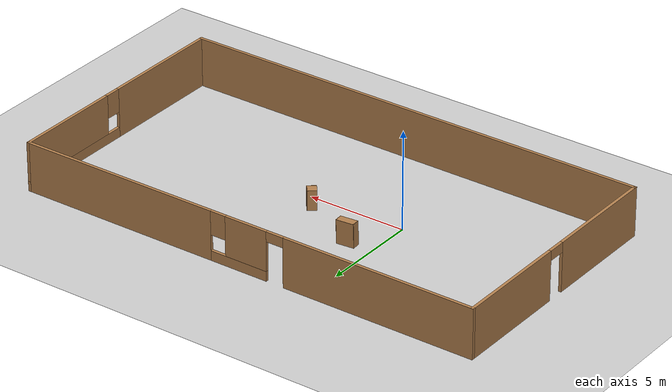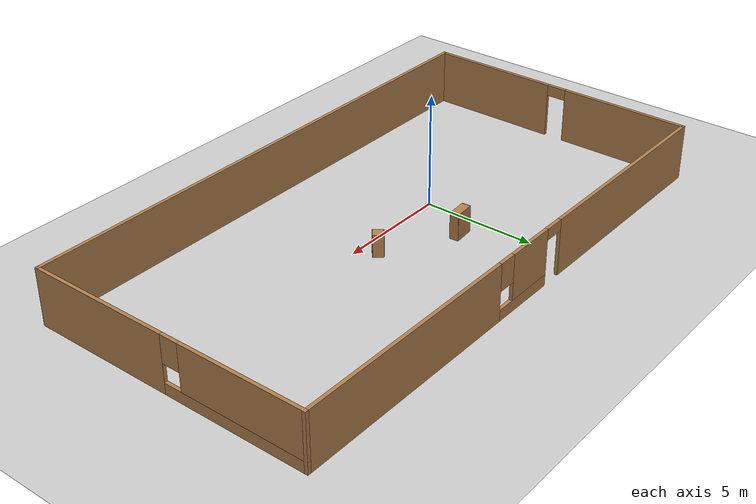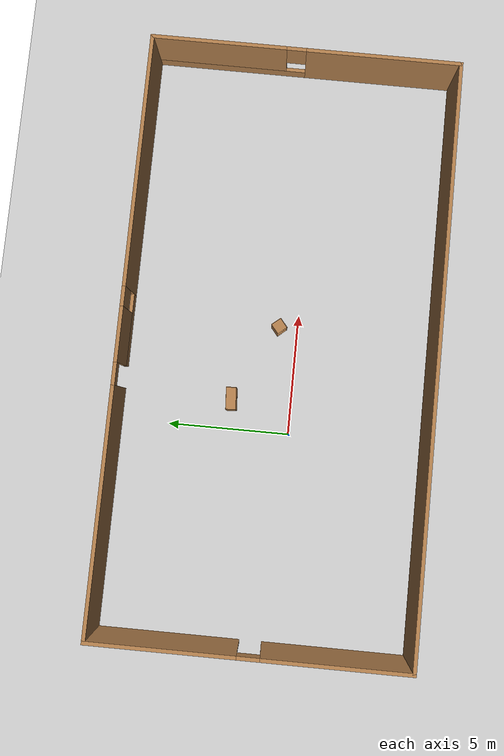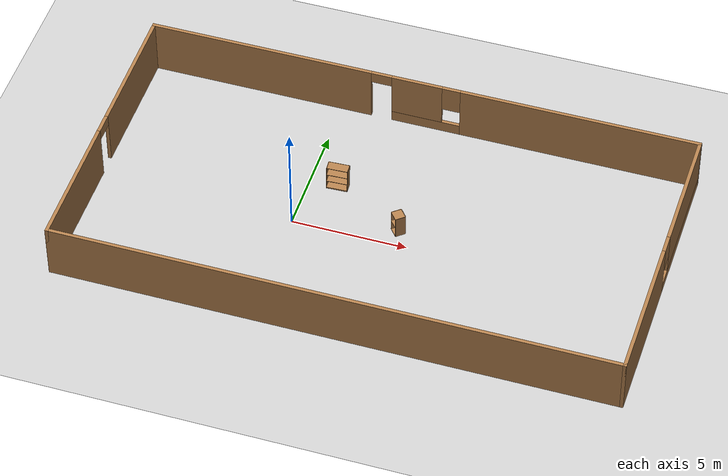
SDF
<sdf version="1.7">
 <world name="default">
  <light name="sun" type="directional">
   <pose>0 0 10 0 -0 0</pose>
   <diffuse>0.8 0.8 0.8 1</diffuse>
   <specular>0.2 0.2 0.2 1</specular>
   <attenuation>
    <range>1000</range>
    <constant>0.9</constant>
    <linear>0.01</linear>
    <quadratic>0.001</quadratic>
   </attenuation>
   <direction>-0.5 0.1 -0.9</direction>
   <spot><inner_angle>0</inner_angle><outer_angle>0</outer_angle><falloff>0</falloff></spot>
  </light>
  <model name="ground_plane">
   <static>1</static>
   <link name="link">
    <collision name="collision">
     <geometry><plane><normal>0 0 1</normal><size>100 100</size></plane></geometry>
     <surface><friction><ode><mu>100</mu><mu2>50</mu2></ode></friction></surface>
    </collision>
    <visual name="visual">
     <cast_shadows>0</cast_shadows>
     <geometry><plane><normal>0 0 1</normal><size>100 100</size></plane></geometry>
     <material>
      <script><uri>file://media/materials/scripts/gazebo.material</uri><name>Gazebo/Grey</name></script>
     </material>
    </visual>
   </link>
  </model>
  <gravity>0 0 -9.8</gravity>
  <magnetic_field>6e-06 2.3e-05 -4.2e-05</magnetic_field>
  <atmosphere type="adiabatic"/>
  <physics type="ode">
   <max_step_size>0.001</max_step_size>
   <real_time_factor>1</real_time_factor>
   <real_time_update_rate>1000</real_time_update_rate>
  </physics>
  <scene><ambient>0.4 0.4 0.4 1</ambient><background>0.7 0.7 0.7 1</background><shadows>1</shadows></scene>
  <audio><device>default</device></audio>
  <spherical_coordinates>
   <surface_model>EARTH_WGS84</surface_model>
   <latitude_deg>0</latitude_deg>
   <longitude_deg>0</longitude_deg>
   <elevation>0</elevation>
   <heading_deg>0</heading_deg>
  </spherical_coordinates>
  <model name="bookshelf">
   <static>1</static>
   <link name="link">
    <inertial><mass>1</mass></inertial>
    <collision name="back">
     <pose>0 0.005 0.6 0 -0 0</pose>
     <geometry><box><size>0.9 0.01 1.2</size></box></geometry>
    </collision>
    <visual name="visual1">
     <pose>0 0.005 0.6 0 -0 0</pose>
     <geometry><box><size>0.9 0.01 1.2</size></box></geometry>
     <material>
      <script><uri>file://media/materials/scripts/gazebo.material</uri><name>Gazebo/Wood</name></script>
     </material>
    </visual>
    <collision name="left_side">
     <pose>0.45 -0.195 0.6 0 -0 0</pose>
     <geometry><box><size>0.02 0.4 1.2</size></box></geometry>
    </collision>
    <visual name="visual2">
     <pose>0.45 -0.195 0.6 0 -0 0</pose>
     <geometry><box><size>0.02 0.4 1.2</size></box></geometry>
     <material>
      <script><uri>file://media/materials/scripts/gazebo.material</uri><name>Gazebo/Wood</name></script>
     </material>
    </visual>
    <collision name="right_side">
     <pose>-0.45 -0.195 0.6 0 -0 0</pose>
     <geometry><box><size>0.02 0.4 1.2</size></box></geometry>
    </collision>
    <visual name="visual3">
     <pose>-0.45 -0.195 0.6 0 -0 0</pose>
     <geometry><box><size>0.02 0.4 1.2</size></box></geometry>
     <material>
      <script><uri>file://media/materials/scripts/gazebo.material</uri><name>Gazebo/Wood</name></script>
     </material>
    </visual>
    <collision name="bottom">
     <pose>0 -0.195 0.03 0 -0 0</pose>
     <geometry><box><size>0.88 0.4 0.06</size></box></geometry>
    </collision>
    <visual name="visual4">
     <pose>0 -0.195 0.03 0 -0 0</pose>
     <geometry><box><size>0.88 0.4 0.06</size></box></geometry>
     <material>
      <script><uri>file://media/materials/scripts/gazebo.material</uri><name>Gazebo/Wood</name></script>
     </material>
    </visual>
    <collision name="top">
     <pose>0 -0.195 1.19 0 -0 0</pose>
     <geometry><box><size>0.88 0.4 0.02</size></box></geometry>
    </collision>
    <visual name="visual5">
     <pose>0 -0.195 1.19 0 -0 0</pose>
     <geometry><box><size>0.88 0.4 0.02</size></box></geometry>
     <material>
      <script><uri>file://media/materials/scripts/gazebo.material</uri><name>Gazebo/Wood</name></script>
     </material>
    </visual>
    <collision name="low_shelf">
     <pose>0 -0.195 0.43 0 -0 0</pose>
     <geometry><box><size>0.88 0.4 0.02</size></box></geometry>
    </collision>
    <visual name="visual6">
     <pose>0 -0.195 0.43 0 -0 0</pose>
     <geometry><box><size>0.88 0.4 0.02</size></box></geometry>
     <material>
      <script><uri>file://media/materials/scripts/gazebo.material</uri><name>Gazebo/Wood</name></script>
     </material>
    </visual>
    <collision name="high_shelf">
     <pose>0 -0.195 0.8 0 -0 0</pose>
     <geometry><box><size>0.88 0.4 0.02</size></box></geometry>
    </collision>
    <visual name="visual7">
     <pose>0 -0.195 0.8 0 -0 0</pose>
     <geometry><box><size>0.88 0.4 0.02</size></box></geometry>
     <material>
      <script><uri>file://media/materials/scripts/gazebo.material</uri><name>Gazebo/Wood</name></script>
     </material>
    </visual>
   </link>
   <pose>1.2122 2.65017 0.02213 0.001573 0.0244 0.064392</pose>
  </model>
  <model name="building01">
   <pose>3.52149 0.727704 0 0 -0 0</pose>
   <link name="Wall_1">
    <pose>-12.05 -0 0 0 -0 -1.5708</pose>
    <visual name="Wall_1_Visual_0">
     <pose>-3.42458 0 1.25 0 -0 0</pose>
     <geometry><box><size>5.90084 0.15 2.5</size></box></geometry>
     <material>
      <script><uri>file://media/materials/scripts/gazebo.material</uri><name>Gazebo/Wood</name></script>
      <ambient>1 1 1 1</ambient>
     </material>
     <meta><layer>0</layer></meta>
    </visual>
    <collision name="Wall_1_Collision_0">
     <geometry><box><size>5.90084 0.15 2.5</size></box></geometry>
     <pose>-3.42458 0 1.25 0 -0 0</pose>
    </collision>
    <visual name="Wall_1_Visual_1">
     <pose>3.40042 0 1.25 0 -0 0</pose>
     <geometry><box><size>5.94916 0.15 2.5</size></box></geometry>
     <material>
      <script><uri>file://media/materials/scripts/gazebo.material</uri><name>Gazebo/Wood</name></script>
      <ambient>1 1 1 1</ambient>
     </material>
     <meta><layer>0</layer></meta>
    </visual>
    <collision name="Wall_1_Collision_1">
     <geometry><box><size>5.94916 0.15 2.5</size></box></geometry>
     <pose>3.40042 0 1.25 0 -0 0</pose>
    </collision>
    <visual name="Wall_1_Visual_2">
     <pose>-0.024157 0 2.25 0 -0 0</pose>
     <geometry><box><size>0.9 0.15 0.5</size></box></geometry>
     <material>
      <script><uri>file://media/materials/scripts/gazebo.material</uri><name>Gazebo/Wood</name></script>
      <ambient>1 1 1 1</ambient>
     </material>
     <meta><layer>0</layer></meta>
    </visual>
    <collision name="Wall_1_Collision_2">
     <geometry><box><size>0.9 0.15 0.5</size></box></geometry>
     <pose>-0.024157 0 2.25 0 -0 0</pose>
    </collision>
   </link>
   <link name="Wall_2">
    <collision name="Wall_2_Collision">
     <geometry><box><size>24.25 0.15 2.5</size></box></geometry>
     <pose>0 0 1.25 0 -0 0</pose>
    </collision>
    <visual name="Wall_2_Visual">
     <pose>0 0 1.25 0 -0 0</pose>
     <geometry><box><size>24.25 0.15 2.5</size></box></geometry>
     <material>
      <script><uri>file://media/materials/scripts/gazebo.material</uri><name>Gazebo/Wood</name></script>
      <ambient>1 1 1 1</ambient>
     </material>
     <meta><layer>0</layer></meta>
    </visual>
    <pose>0 -6.3 0 0 -0 0</pose>
   </link>
   <link name="Wall_3">
    <pose>12.05 -0 0 0 -0 1.5708</pose>
    <visual name="Wall_3_Visual_0">
     <pose>-3.18672 0 1.25 0 -0 0</pose>
     <geometry><box><size>6.37657 0.15 2.5</size></box></geometry>
     <material>
      <script><uri>file://media/materials/scripts/gazebo.material</uri><name>Gazebo/Wood</name></script>
      <ambient>1 1 1 1</ambient>
     </material>
     <meta><layer>0</layer></meta>
    </visual>
    <collision name="Wall_3_Collision_0">
     <geometry><box><size>6.37657 0.15 2.5</size></box></geometry>
     <pose>-3.18672 0 1.25 0 -0 0</pose>
    </collision>
    <visual name="Wall_3_Visual_1">
     <pose>3.18828 0 0.25 0 -0 0</pose>
     <geometry><box><size>6.37343 0.15 0.5</size></box></geometry>
     <material>
      <script><uri>file://media/materials/scripts/gazebo.material</uri><name>Gazebo/Wood</name></script>
      <ambient>1 1 1 1</ambient>
     </material>
     <meta><layer>0</layer></meta>
    </visual>
    <collision name="Wall_3_Collision_1">
     <geometry><box><size>6.37343 0.15 0.5</size></box></geometry>
     <pose>3.18828 0 0.25 0 -0 0</pose>
    </collision>
    <visual name="Wall_3_Visual_2">
     <pose>3.58828 0 1.5 0 -0 0</pose>
     <geometry><box><size>5.57343 0.15 2</size></box></geometry>
     <material>
      <script><uri>file://media/materials/scripts/gazebo.material</uri><name>Gazebo/Wood</name></script>
      <ambient>1 1 1 1</ambient>
     </material>
     <meta><layer>0</layer></meta>
    </visual>
    <collision name="Wall_3_Collision_2">
     <geometry><box><size>5.57343 0.15 2</size></box></geometry>
     <pose>3.58828 0 1.5 0 -0 0</pose>
    </collision>
    <visual name="Wall_3_Visual_3">
     <pose>0.401566 0 1.9 0 -0 0</pose>
     <geometry><box><size>0.8 0.15 1.2</size></box></geometry>
     <material>
      <script><uri>file://media/materials/scripts/gazebo.material</uri><name>Gazebo/Wood</name></script>
      <ambient>1 1 1 1</ambient>
     </material>
     <meta><layer>0</layer></meta>
    </visual>
    <collision name="Wall_3_Collision_3">
     <geometry><box><size>0.8 0.15 1.2</size></box></geometry>
     <pose>0.401566 0 1.9 0 -0 0</pose>
    </collision>
   </link>
   <link name="Wall_4">
    <pose>0 6.3 0 0 -0 3.14159</pose>
    <visual name="Wall_4_Visual_0">
     <pose>-6.91327 0 1.25 0 -0 0</pose>
     <geometry><box><size>10.4235 0.15 2.5</size></box></geometry>
     <material>
      <script><uri>file://media/materials/scripts/gazebo.material</uri><name>Gazebo/Wood</name></script>
      <ambient>1 1 1 1</ambient>
     </material>
     <meta><layer>0</layer></meta>
    </visual>
    <collision name="Wall_4_Collision_0">
     <geometry><box><size>10.4235 0.15 2.5</size></box></geometry>
     <pose>-6.91327 0 1.25 0 -0 0</pose>
    </collision>
    <visual name="Wall_4_Visual_1">
     <pose>7.17492 0 1.25 0 -0 0</pose>
     <geometry><box><size>9.90015 0.15 2.5</size></box></geometry>
     <material>
      <script><uri>file://media/materials/scripts/gazebo.material</uri><name>Gazebo/Wood</name></script>
      <ambient>1 1 1 1</ambient>
     </material>
     <meta><layer>0</layer></meta>
    </visual>
    <collision name="Wall_4_Collision_1">
     <geometry><box><size>9.90015 0.15 2.5</size></box></geometry>
     <pose>7.17492 0 1.25 0 -0 0</pose>
    </collision>
    <visual name="Wall_4_Visual_2">
     <pose>-0.188352 0 0.25 0 -0 0</pose>
     <geometry><box><size>3.02639 0.15 0.5</size></box></geometry>
     <material>
      <script><uri>file://media/materials/scripts/gazebo.material</uri><name>Gazebo/Wood</name></script>
      <ambient>1 1 1 1</ambient>
     </material>
     <meta><layer>0</layer></meta>
    </visual>
    <collision name="Wall_4_Collision_2">
     <geometry><box><size>3.02639 0.15 0.5</size></box></geometry>
     <pose>-0.188352 0 0.25 0 -0 0</pose>
    </collision>
    <visual name="Wall_4_Visual_3">
     <pose>0.211648 0 1.5 0 -0 0</pose>
     <geometry><box><size>2.22639 0.15 2</size></box></geometry>
     <material>
      <script><uri>file://media/materials/scripts/gazebo.material</uri><name>Gazebo/Wood</name></script>
      <ambient>1 1 1 1</ambient>
     </material>
     <meta><layer>0</layer></meta>
    </visual>
    <collision name="Wall_4_Collision_3">
     <geometry><box><size>2.22639 0.15 2</size></box></geometry>
     <pose>0.211648 0 1.5 0 -0 0</pose>
    </collision>
    <visual name="Wall_4_Visual_4">
     <pose>-1.30155 0 1.9 0 -0 0</pose>
     <geometry><box><size>0.8 0.15 1.2</size></box></geometry>
     <material>
      <script><uri>file://media/materials/scripts/gazebo.material</uri><name>Gazebo/Wood</name></script>
      <ambient>1 1 1 1</ambient>
     </material>
     <meta><layer>0</layer></meta>
    </visual>
    <collision name="Wall_4_Collision_4">
     <geometry><box><size>0.8 0.15 1.2</size></box></geometry>
     <pose>-1.30155 0 1.9 0 -0 0</pose>
    </collision>
    <visual name="Wall_4_Visual_5">
     <pose>1.77485 0 2.25 0 -0 0</pose>
     <geometry><box><size>0.9 0.15 0.5</size></box></geometry>
     <material>
      <script><uri>file://media/materials/scripts/gazebo.material</uri><name>Gazebo/Wood</name></script>
      <ambient>1 1 1 1</ambient>
     </material>
     <meta><layer>0</layer></meta>
    </visual>
    <collision name="Wall_4_Collision_5">
     <geometry><box><size>0.9 0.15 0.5</size></box></geometry>
     <pose>1.77485 0 2.25 0 -0 0</pose>
    </collision>
   </link>
   <static>1</static>
  </model>
  <model name="cabinet">
   <static>1</static>
   <link name="cabinet_bottom_plate">
    <inertial>
     <pose>0 0 -1 0 -0 0</pose>
     <inertia><ixx>2.05</ixx><ixy>0</ixy><ixz>0</ixz><iyy>2.05</iyy><iyz>0</iyz><izz>2.05</izz></inertia>
     <mass>25</mass>
    </inertial>
    <collision name="cabinet_bottom_plate_geom">
     <pose>0 0 0.01 0 -0 0</pose>
     <geometry><box><size>0.45 0.45 0.02</size></box></geometry>
    </collision>
    <visual name="cabinet_bottom_plate_geom_visual">
     <pose>0 0 0.01 0 -0 0</pose>
     <geometry><box><size>0.45 0.45 0.02</size></box></geometry>
     <material>
      <script><uri>file://media/materials/scripts/gazebo.material</uri><name>Gazebo/Wood</name></script>
     </material>
    </visual>
    <collision name="cabinet_bottom_plate_geom_cabinet_back_plate">
     <pose>0.235 0 0.51 0 -0 0</pose>
     <geometry><box><size>0.02 0.45 1.02</size></box></geometry>
    </collision>
    <visual name="cabinet_bottom_plate_geom_cabinet_back_plate_visual">
     <pose>0.235 0 0.51 0 -0 0</pose>
     <geometry><box><size>0.02 0.45 1.02</size></box></geometry>
     <material>
      <script><uri>file://media/materials/scripts/gazebo.material</uri><name>Gazebo/Wood</name></script>
     </material>
    </visual>
    <collision name="cabinet_bottom_plate_geom_cabinet_left_plate">
     <pose>0 0.235 0.51 0 -0 0</pose>
     <geometry><box><size>0.45 0.02 1.02</size></box></geometry>
    </collision>
    <visual name="cabinet_bottom_plate_geom_cabinet_left_plate_visual">
     <pose>0 0.235 0.51 0 -0 0</pose>
     <geometry><box><size>0.45 0.02 1.02</size></box></geometry>
     <material>
      <script><uri>file://media/materials/scripts/gazebo.material</uri><name>Gazebo/Wood</name></script>
     </material>
    </visual>
    <collision name="cabinet_bottom_plate_geom_cabinet_middle_plate">
     <pose>0 0 0.51 0 -0 0</pose>
     <geometry><box><size>0.45 0.45 0.02</size></box></geometry>
    </collision>
    <visual name="cabinet_bottom_plate_geom_cabinet_middle_plate_visual">
     <pose>0 0 0.51 0 -0 0</pose>
     <geometry><box><size>0.45 0.45 0.02</size></box></geometry>
     <material>
      <script><uri>file://media/materials/scripts/gazebo.material</uri><name>Gazebo/Wood</name></script>
     </material>
    </visual>
    <collision name="cabinet_bottom_plate_geom_cabinet_right_plate">
     <pose>0 -0.235 0.51 0 -0 0</pose>
     <geometry><box><size>0.45 0.02 1.02</size></box></geometry>
    </collision>
    <visual name="cabinet_bottom_plate_geom_cabinet_right_plate_visual">
     <pose>0 -0.235 0.51 0 -0 0</pose>
     <geometry><box><size>0.45 0.02 1.02</size></box></geometry>
     <material>
      <script><uri>file://media/materials/scripts/gazebo.material</uri><name>Gazebo/Wood</name></script>
     </material>
    </visual>
    <collision name="cabinet_bottom_plate_geom_cabinet_top_plate">
     <pose>0 0 1.01 0 -0 0</pose>
     <geometry><box><size>0.45 0.45 0.02</size></box></geometry>
    </collision>
    <visual name="cabinet_bottom_plate_geom_cabinet_top_plate_visual">
     <pose>0 0 1.01 0 -0 0</pose>
     <geometry><box><size>0.45 0.45 0.02</size></box></geometry>
     <material>
      <script><uri>file://media/materials/scripts/gazebo.material</uri><name>Gazebo/Wood</name></script>
     </material>
    </visual>
   </link>
   <pose>4.39576 0.782884 0 0 -0 0.691748</pose>
  </model>
 </world>
</sdf>
